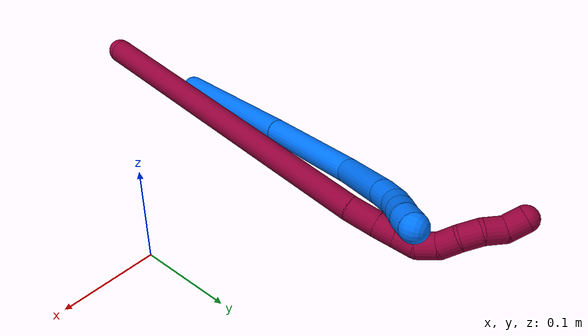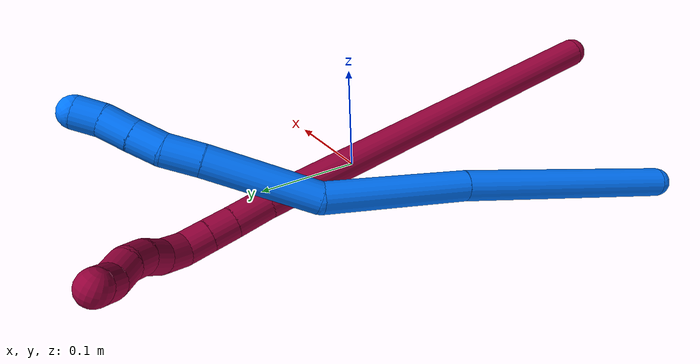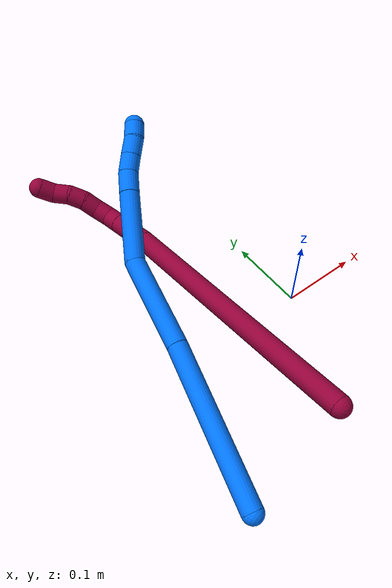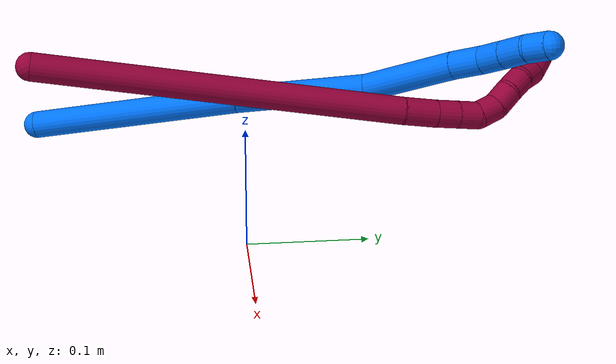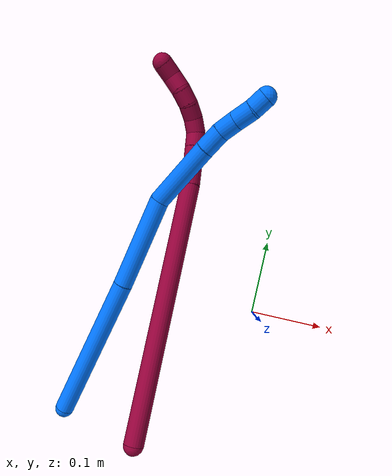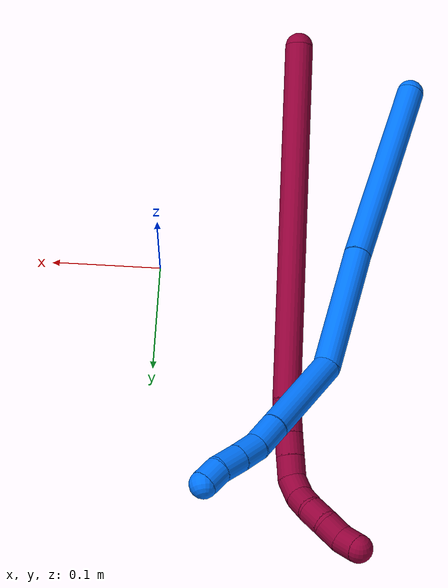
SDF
<sdf version="1.7">
 <world name="default">
  <model name="8">
   <static>0</static>
   <link name="8">
    <collision name="collision-cylinder-e_1_1_4">
     <pose>-0.027862 0.123415 0.104844 -0.866575 -0.170386 0.078972</pose>
     <geometry><cylinder><radius>0.0125</radius><length>0.328632</length></cylinder></geometry>
     <surface>
      <friction><ode><mu>1.16</mu><mu2>1.16</mu2><slip1>0</slip1><slip2>0</slip2></ode></friction>
      <contact><ode><kp>1e+06</kp><kd>1</kd><max_vel>0</max_vel><min_depth>0.001</min_depth></ode></contact>
     </surface>
    </collision>
    <visual name="visual-cylinder-e_1_1_4">
     <pose>-0.027862 0.123415 0.104844 -0.866575 -0.170386 0.078972</pose>
     <geometry><cylinder><radius>0.0125</radius><length>0.328632</length></cylinder></geometry>
     <material><ambient>0.584314 0 0.227451 1</ambient></material>
    </visual>
    <collision name="collision-cylinder-e_2_4_5">
     <pose>-0.056985 0.258665 0.21929 -0.889272 -0.082578 0.039362</pose>
     <geometry><cylinder><radius>0.0125</radius><length>0.030586</length></cylinder></geometry>
     <surface>
      <friction><ode><mu>1.16</mu><mu2>1.16</mu2><slip1>0</slip1><slip2>0</slip2></ode></friction>
      <contact><ode><kp>1e+06</kp><kd>1</kd><max_vel>0</max_vel><min_depth>0.001</min_depth></ode></contact>
     </surface>
    </collision>
    <visual name="visual-cylinder-e_2_4_5">
     <pose>-0.056985 0.258665 0.21929 -0.889272 -0.082578 0.039362</pose>
     <geometry><cylinder><radius>0.0125</radius><length>0.030586</length></cylinder></geometry>
     <material><ambient>0.584314 0 0.227451 1</ambient></material>
    </visual>
    <collision name="collision-cylinder-e_3_5_6">
     <pose>-0.059007 0.278737 0.23508 -0.926402 -0.07369 0.036816</pose>
     <geometry><cylinder><radius>0.0125</radius><length>0.020657</length></cylinder></geometry>
     <surface>
      <friction><ode><mu>1.16</mu><mu2>1.16</mu2><slip1>0</slip1><slip2>0</slip2></ode></friction>
      <contact><ode><kp>1e+06</kp><kd>1</kd><max_vel>0</max_vel><min_depth>0.001</min_depth></ode></contact>
     </surface>
    </collision>
    <visual name="visual-cylinder-e_3_5_6">
     <pose>-0.059007 0.278737 0.23508 -0.926402 -0.07369 0.036816</pose>
     <geometry><cylinder><radius>0.0125</radius><length>0.020657</length></cylinder></geometry>
     <material><ambient>0.584314 0 0.227451 1</ambient></material>
    </visual>
    <collision name="collision-cylinder-e_4_6_7">
     <pose>-0.060507 0.294961 0.247318 -0.922595 -0.073686 0.036639</pose>
     <geometry><cylinder><radius>0.0125</radius><length>0.020099</length></cylinder></geometry>
     <surface>
      <friction><ode><mu>1.16</mu><mu2>1.16</mu2><slip1>0</slip1><slip2>0</slip2></ode></friction>
      <contact><ode><kp>1e+06</kp><kd>1</kd><max_vel>0</max_vel><min_depth>0.001</min_depth></ode></contact>
     </surface>
    </collision>
    <visual name="visual-cylinder-e_4_6_7">
     <pose>-0.060507 0.294961 0.247318 -0.922595 -0.073686 0.036639</pose>
     <geometry><cylinder><radius>0.0125</radius><length>0.020099</length></cylinder></geometry>
     <material><ambient>0.584314 0 0.227451 1</ambient></material>
    </visual>
    <collision name="collision-cylinder-e_5_7_8">
     <pose>-0.059968 0.312671 0.255382 -1.36665 0.128195 -0.104421</pose>
     <geometry><cylinder><radius>0.0125</radius><length>0.020018</length></cylinder></geometry>
     <surface>
      <friction><ode><mu>1.16</mu><mu2>1.16</mu2><slip1>0</slip1><slip2>0</slip2></ode></friction>
      <contact><ode><kp>1e+06</kp><kd>1</kd><max_vel>0</max_vel><min_depth>0.001</min_depth></ode></contact>
     </surface>
    </collision>
    <visual name="visual-cylinder-e_5_7_8">
     <pose>-0.059968 0.312671 0.255382 -1.36665 0.128195 -0.104421</pose>
     <geometry><cylinder><radius>0.0125</radius><length>0.020018</length></cylinder></geometry>
     <material><ambient>0.584314 0 0.227451 1</ambient></material>
    </visual>
    <collision name="collision-cylinder-e_6_8_9">
     <pose>-0.056642 0.332076 0.255957 -1.71818 0.20604 -0.238597</pose>
     <geometry><cylinder><radius>0.0125</radius><length>0.020003</length></cylinder></geometry>
     <surface>
      <friction><ode><mu>1.16</mu><mu2>1.16</mu2><slip1>0</slip1><slip2>0</slip2></ode></friction>
      <contact><ode><kp>1e+06</kp><kd>1</kd><max_vel>0</max_vel><min_depth>0.001</min_depth></ode></contact>
     </surface>
    </collision>
    <visual name="visual-cylinder-e_6_8_9">
     <pose>-0.056642 0.332076 0.255957 -1.71818 0.20604 -0.238597</pose>
     <geometry><cylinder><radius>0.0125</radius><length>0.020003</length></cylinder></geometry>
     <material><ambient>0.584314 0 0.227451 1</ambient></material>
    </visual>
    <collision name="collision-cylinder-e_7_9_10">
     <pose>-0.050654 0.350951 0.254573 -1.56487 0.405111 -0.402783</pose>
     <geometry><cylinder><radius>0.0125</radius><length>0.02</length></cylinder></geometry>
     <surface>
      <friction><ode><mu>1.16</mu><mu2>1.16</mu2><slip1>0</slip1><slip2>0</slip2></ode></friction>
      <contact><ode><kp>1e+06</kp><kd>1</kd><max_vel>0</max_vel><min_depth>0.001</min_depth></ode></contact>
     </surface>
    </collision>
    <visual name="visual-cylinder-e_7_9_10">
     <pose>-0.050654 0.350951 0.254573 -1.56487 0.405111 -0.402783</pose>
     <geometry><cylinder><radius>0.0125</radius><length>0.02</length></cylinder></geometry>
     <material><ambient>0.584314 0 0.227451 1</ambient></material>
    </visual>
    <collision name="collision-cylinder-e_8_10_11">
     <pose>-0.041347 0.368175 0.257212 -1.25957 0.566344 -0.417949</pose>
     <geometry><cylinder><radius>0.0125</radius><length>0.020002</length></cylinder></geometry>
     <surface>
      <friction><ode><mu>1.16</mu><mu2>1.16</mu2><slip1>0</slip1><slip2>0</slip2></ode></friction>
      <contact><ode><kp>1e+06</kp><kd>1</kd><max_vel>0</max_vel><min_depth>0.001</min_depth></ode></contact>
     </surface>
    </collision>
    <visual name="visual-cylinder-e_8_10_11">
     <pose>-0.041347 0.368175 0.257212 -1.25957 0.566344 -0.417949</pose>
     <geometry><cylinder><radius>0.0125</radius><length>0.020002</length></cylinder></geometry>
     <material><ambient>0.584314 0 0.227451 1</ambient></material>
    </visual>
    <collision name="collision-cylinder-e_9_11_2">
     <pose>-0.031311 0.384894 0.25813 -1.76039 0.485853 -0.582729</pose>
     <geometry><cylinder><radius>0.0125</radius><length>0.020001</length></cylinder></geometry>
     <surface>
      <friction><ode><mu>1.16</mu><mu2>1.16</mu2><slip1>0</slip1><slip2>0</slip2></ode></friction>
      <contact><ode><kp>1e+06</kp><kd>1</kd><max_vel>0</max_vel><min_depth>0.001</min_depth></ode></contact>
     </surface>
    </collision>
    <visual name="visual-cylinder-e_9_11_2">
     <pose>-0.031311 0.384894 0.25813 -1.76039 0.485853 -0.582729</pose>
     <geometry><cylinder><radius>0.0125</radius><length>0.020001</length></cylinder></geometry>
     <material><ambient>0.584314 0 0.227451 1</ambient></material>
    </visual>
    <collision name="collision-sphere-2">
     <pose>-0.026641 0.393579 0.256464 0 -0 0</pose>
     <geometry><sphere><radius>0.0125</radius></sphere></geometry>
     <surface>
      <friction><ode><mu>1.16</mu><mu2>1.16</mu2><slip1>0</slip1><slip2>0</slip2></ode></friction>
      <contact><ode><kp>1e+06</kp><kd>1</kd><max_vel>0</max_vel><min_depth>0.001</min_depth></ode></contact>
     </surface>
    </collision>
    <visual name="visual-sphere-2">
     <pose>-0.026641 0.393579 0.256464 0 -0 0</pose>
     <geometry><sphere><radius>0.0125</radius></sphere></geometry>
     <material><ambient>0.584314 0 0.227451 1</ambient></material>
    </visual>
    <collision name="collision-sphere-11">
     <pose>-0.035981 0.37621 0.259797 0 -0 0</pose>
     <geometry><sphere><radius>0.0125</radius></sphere></geometry>
     <surface>
      <friction><ode><mu>1.16</mu><mu2>1.16</mu2><slip1>0</slip1><slip2>0</slip2></ode></friction>
      <contact><ode><kp>1e+06</kp><kd>1</kd><max_vel>0</max_vel><min_depth>0.001</min_depth></ode></contact>
     </surface>
    </collision>
    <visual name="visual-sphere-11">
     <pose>-0.035981 0.37621 0.259797 0 -0 0</pose>
     <geometry><sphere><radius>0.0125</radius></sphere></geometry>
     <material><ambient>0.584314 0 0.227451 1</ambient></material>
    </visual>
    <collision name="collision-sphere-10">
     <pose>-0.046713 0.360141 0.254628 0 -0 0</pose>
     <geometry><sphere><radius>0.0125</radius></sphere></geometry>
     <surface>
      <friction><ode><mu>1.16</mu><mu2>1.16</mu2><slip1>0</slip1><slip2>0</slip2></ode></friction>
      <contact><ode><kp>1e+06</kp><kd>1</kd><max_vel>0</max_vel><min_depth>0.001</min_depth></ode></contact>
     </surface>
    </collision>
    <visual name="visual-sphere-10">
     <pose>-0.046713 0.360141 0.254628 0 -0 0</pose>
     <geometry><sphere><radius>0.0125</radius></sphere></geometry>
     <material><ambient>0.584314 0 0.227451 1</ambient></material>
    </visual>
    <collision name="collision-sphere-9">
     <pose>-0.054596 0.34176 0.254519 0 -0 0</pose>
     <geometry><sphere><radius>0.0125</radius></sphere></geometry>
     <surface>
      <friction><ode><mu>1.16</mu><mu2>1.16</mu2><slip1>0</slip1><slip2>0</slip2></ode></friction>
      <contact><ode><kp>1e+06</kp><kd>1</kd><max_vel>0</max_vel><min_depth>0.001</min_depth></ode></contact>
     </surface>
    </collision>
    <visual name="visual-sphere-9">
     <pose>-0.054596 0.34176 0.254519 0 -0 0</pose>
     <geometry><sphere><radius>0.0125</radius></sphere></geometry>
     <material><ambient>0.584314 0 0.227451 1</ambient></material>
    </visual>
    <collision name="collision-sphere-4">
     <pose>-0.055724 0.246829 0.209689 0 -0 0</pose>
     <geometry><sphere><radius>0.0125</radius></sphere></geometry>
     <surface>
      <friction><ode><mu>1.16</mu><mu2>1.16</mu2><slip1>0</slip1><slip2>0</slip2></ode></friction>
      <contact><ode><kp>1e+06</kp><kd>1</kd><max_vel>0</max_vel><min_depth>0.001</min_depth></ode></contact>
     </surface>
    </collision>
    <visual name="visual-sphere-4">
     <pose>-0.055724 0.246829 0.209689 0 -0 0</pose>
     <geometry><sphere><radius>0.0125</radius></sphere></geometry>
     <material><ambient>0.584314 0 0.227451 1</ambient></material>
    </visual>
    <collision name="collision-sphere-1">
     <geometry><sphere><radius>0.0125</radius></sphere></geometry>
     <surface>
      <friction><ode><mu>1.16</mu><mu2>1.16</mu2><slip1>0</slip1><slip2>0</slip2></ode></friction>
      <contact><ode><kp>1e+06</kp><kd>1</kd><max_vel>0</max_vel><min_depth>0.001</min_depth></ode></contact>
     </surface>
    </collision>
    <visual name="visual-sphere-1">
     <geometry><sphere><radius>0.0125</radius></sphere></geometry>
     <material><ambient>0.584314 0 0.227451 1</ambient></material>
    </visual>
    <collision name="collision-sphere-8">
     <pose>-0.058688 0.322392 0.257394 0 -0 0</pose>
     <geometry><sphere><radius>0.0125</radius></sphere></geometry>
     <surface>
      <friction><ode><mu>1.16</mu><mu2>1.16</mu2><slip1>0</slip1><slip2>0</slip2></ode></friction>
      <contact><ode><kp>1e+06</kp><kd>1</kd><max_vel>0</max_vel><min_depth>0.001</min_depth></ode></contact>
     </surface>
    </collision>
    <visual name="visual-sphere-8">
     <pose>-0.058688 0.322392 0.257394 0 -0 0</pose>
     <geometry><sphere><radius>0.0125</radius></sphere></geometry>
     <material><ambient>0.584314 0 0.227451 1</ambient></material>
    </visual>
    <collision name="collision-sphere-5">
     <pose>-0.058247 0.270502 0.228892 0 -0 0</pose>
     <geometry><sphere><radius>0.0125</radius></sphere></geometry>
     <surface>
      <friction><ode><mu>1.16</mu><mu2>1.16</mu2><slip1>0</slip1><slip2>0</slip2></ode></friction>
      <contact><ode><kp>1e+06</kp><kd>1</kd><max_vel>0</max_vel><min_depth>0.001</min_depth></ode></contact>
     </surface>
    </collision>
    <visual name="visual-sphere-5">
     <pose>-0.058247 0.270502 0.228892 0 -0 0</pose>
     <geometry><sphere><radius>0.0125</radius></sphere></geometry>
     <material><ambient>0.584314 0 0.227451 1</ambient></material>
    </visual>
    <collision name="collision-sphere-6">
     <pose>-0.059768 0.286972 0.241267 0 -0 0</pose>
     <geometry><sphere><radius>0.0125</radius></sphere></geometry>
     <surface>
      <friction><ode><mu>1.16</mu><mu2>1.16</mu2><slip1>0</slip1><slip2>0</slip2></ode></friction>
      <contact><ode><kp>1e+06</kp><kd>1</kd><max_vel>0</max_vel><min_depth>0.001</min_depth></ode></contact>
     </surface>
    </collision>
    <visual name="visual-sphere-6">
     <pose>-0.059768 0.286972 0.241267 0 -0 0</pose>
     <geometry><sphere><radius>0.0125</radius></sphere></geometry>
     <material><ambient>0.584314 0 0.227451 1</ambient></material>
    </visual>
    <collision name="collision-sphere-7">
     <pose>-0.061247 0.302951 0.253369 0 -0 0</pose>
     <geometry><sphere><radius>0.0125</radius></sphere></geometry>
     <surface>
      <friction><ode><mu>1.16</mu><mu2>1.16</mu2><slip1>0</slip1><slip2>0</slip2></ode></friction>
      <contact><ode><kp>1e+06</kp><kd>1</kd><max_vel>0</max_vel><min_depth>0.001</min_depth></ode></contact>
     </surface>
    </collision>
    <visual name="visual-sphere-7">
     <pose>-0.061247 0.302951 0.253369 0 -0 0</pose>
     <geometry><sphere><radius>0.0125</radius></sphere></geometry>
     <material><ambient>0.584314 0 0.227451 1</ambient></material>
    </visual>
    <inertial>
     <pose>-0.036268 0.190279 0.153242 0 -0 0</pose>
     <mass>0.5</mass>
     <inertia>
      <ixx>0.003158</ixx>
      <ixy>0</ixy>
      <ixz>0</ixz>
      <iyy>0.002213</iyy>
      <iyz>0</iyz>
      <izz>-0.001721</izz>
     </inertia>
    </inertial>
   </link>
   <pose>-0.118384 -0.175534 0.117947 2.64096 0.191829 -2.91797</pose>
  </model>
  <model name="14">
   <static>0</static>
   <link name="14">
    <collision name="collision-cylinder-e_1_1_4">
     <pose>-0.000472 0.04297 0.088024 -0.454132 -0.004818 0.001113</pose>
     <geometry><cylinder><radius>0.0125</radius><length>0.195907</length></cylinder></geometry>
     <surface>
      <friction><ode><mu>1.16</mu><mu2>1.16</mu2><slip1>0</slip1><slip2>0</slip2></ode></friction>
      <contact><ode><kp>1e+06</kp><kd>1</kd><max_vel>0</max_vel><min_depth>0.001</min_depth></ode></contact>
     </surface>
    </collision>
    <visual name="visual-cylinder-e_1_1_4">
     <pose>-0.000472 0.04297 0.088024 -0.454132 -0.004818 0.001113</pose>
     <geometry><cylinder><radius>0.0125</radius><length>0.195907</length></cylinder></geometry>
     <material><ambient>0 0.462745 1 1</ambient></material>
    </visual>
    <collision name="collision-cylinder-e_2_4_5">
     <pose>-0.00315 0.109598 0.231469 -0.403462 -0.036594 0.007485</pose>
     <geometry><cylinder><radius>0.0125</radius><length>0.120599</length></cylinder></geometry>
     <surface>
      <friction><ode><mu>1.16</mu><mu2>1.16</mu2><slip1>0</slip1><slip2>0</slip2></ode></friction>
      <contact><ode><kp>1e+06</kp><kd>1</kd><max_vel>0</max_vel><min_depth>0.001</min_depth></ode></contact>
     </surface>
    </collision>
    <visual name="visual-cylinder-e_2_4_5">
     <pose>-0.00315 0.109598 0.231469 -0.403462 -0.036594 0.007485</pose>
     <geometry><cylinder><radius>0.0125</radius><length>0.120599</length></cylinder></geometry>
     <material><ambient>0 0.462745 1 1</ambient></material>
    </visual>
    <collision name="collision-cylinder-e_3_5_6">
     <pose>-0.001429 0.165136 0.317491 -0.805864 0.08864 -0.037803</pose>
     <geometry><cylinder><radius>0.0125</radius><length>0.08873</length></cylinder></geometry>
     <surface>
      <friction><ode><mu>1.16</mu><mu2>1.16</mu2><slip1>0</slip1><slip2>0</slip2></ode></friction>
      <contact><ode><kp>1e+06</kp><kd>1</kd><max_vel>0</max_vel><min_depth>0.001</min_depth></ode></contact>
     </surface>
    </collision>
    <visual name="visual-cylinder-e_3_5_6">
     <pose>-0.001429 0.165136 0.317491 -0.805864 0.08864 -0.037803</pose>
     <geometry><cylinder><radius>0.0125</radius><length>0.08873</length></cylinder></geometry>
     <material><ambient>0 0.462745 1 1</ambient></material>
    </visual>
    <collision name="collision-cylinder-e_4_6_7">
     <pose>0.002883 0.207171 0.35784 -0.805849 0.027327 -0.011649</pose>
     <geometry><cylinder><radius>0.0125</radius><length>0.028162</length></cylinder></geometry>
     <surface>
      <friction><ode><mu>1.16</mu><mu2>1.16</mu2><slip1>0</slip1><slip2>0</slip2></ode></friction>
      <contact><ode><kp>1e+06</kp><kd>1</kd><max_vel>0</max_vel><min_depth>0.001</min_depth></ode></contact>
     </surface>
    </collision>
    <visual name="visual-cylinder-e_4_6_7">
     <pose>0.002883 0.207171 0.35784 -0.805849 0.027327 -0.011649</pose>
     <geometry><cylinder><radius>0.0125</radius><length>0.028162</length></cylinder></geometry>
     <material><ambient>0 0.462745 1 1</ambient></material>
    </visual>
    <collision name="collision-cylinder-e_5_7_8">
     <pose>0.00393 0.227063 0.373542 -1.02193 0.057909 -0.032471</pose>
     <geometry><cylinder><radius>0.0125</radius><length>0.022866</length></cylinder></geometry>
     <surface>
      <friction><ode><mu>1.16</mu><mu2>1.16</mu2><slip1>0</slip1><slip2>0</slip2></ode></friction>
      <contact><ode><kp>1e+06</kp><kd>1</kd><max_vel>0</max_vel><min_depth>0.001</min_depth></ode></contact>
     </surface>
    </collision>
    <visual name="visual-cylinder-e_5_7_8">
     <pose>0.00393 0.227063 0.373542 -1.02193 0.057909 -0.032471</pose>
     <geometry><cylinder><radius>0.0125</radius><length>0.022866</length></cylinder></geometry>
     <material><ambient>0 0.462745 1 1</ambient></material>
    </visual>
    <collision name="collision-cylinder-e_6_8_9">
     <pose>0.005292 0.24711 0.385322 -1.05647 0.059142 -0.034519</pose>
     <geometry><cylinder><radius>0.0125</radius><length>0.023723</length></cylinder></geometry>
     <surface>
      <friction><ode><mu>1.16</mu><mu2>1.16</mu2><slip1>0</slip1><slip2>0</slip2></ode></friction>
      <contact><ode><kp>1e+06</kp><kd>1</kd><max_vel>0</max_vel><min_depth>0.001</min_depth></ode></contact>
     </surface>
    </collision>
    <visual name="visual-cylinder-e_6_8_9">
     <pose>0.005292 0.24711 0.385322 -1.05647 0.059142 -0.034519</pose>
     <geometry><cylinder><radius>0.0125</radius><length>0.023723</length></cylinder></geometry>
     <material><ambient>0 0.462745 1 1</ambient></material>
    </visual>
    <collision name="collision-cylinder-e_7_9_2">
     <pose>0.005822 0.265053 0.397614 -0.868022 -0.017133 0.007941</pose>
     <geometry><cylinder><radius>0.0125</radius><length>0.020013</length></cylinder></geometry>
     <surface>
      <friction><ode><mu>1.16</mu><mu2>1.16</mu2><slip1>0</slip1><slip2>0</slip2></ode></friction>
      <contact><ode><kp>1e+06</kp><kd>1</kd><max_vel>0</max_vel><min_depth>0.001</min_depth></ode></contact>
     </surface>
    </collision>
    <visual name="visual-cylinder-e_7_9_2">
     <pose>0.005822 0.265053 0.397614 -0.868022 -0.017133 0.007941</pose>
     <geometry><cylinder><radius>0.0125</radius><length>0.020013</length></cylinder></geometry>
     <material><ambient>0 0.462745 1 1</ambient></material>
    </visual>
    <collision name="collision-sphere-2">
     <pose>0.005651 0.272687 0.404081 0 -0 0</pose>
     <geometry><sphere><radius>0.0125</radius></sphere></geometry>
     <surface>
      <friction><ode><mu>1.16</mu><mu2>1.16</mu2><slip1>0</slip1><slip2>0</slip2></ode></friction>
      <contact><ode><kp>1e+06</kp><kd>1</kd><max_vel>0</max_vel><min_depth>0.001</min_depth></ode></contact>
     </surface>
    </collision>
    <visual name="visual-sphere-2">
     <pose>0.005651 0.272687 0.404081 0 -0 0</pose>
     <geometry><sphere><radius>0.0125</radius></sphere></geometry>
     <material><ambient>0 0.462745 1 1</ambient></material>
    </visual>
    <collision name="collision-sphere-9">
     <pose>0.005994 0.257418 0.391147 0 -0 0</pose>
     <geometry><sphere><radius>0.0125</radius></sphere></geometry>
     <surface>
      <friction><ode><mu>1.16</mu><mu2>1.16</mu2><slip1>0</slip1><slip2>0</slip2></ode></friction>
      <contact><ode><kp>1e+06</kp><kd>1</kd><max_vel>0</max_vel><min_depth>0.001</min_depth></ode></contact>
     </surface>
    </collision>
    <visual name="visual-sphere-9">
     <pose>0.005994 0.257418 0.391147 0 -0 0</pose>
     <geometry><sphere><radius>0.0125</radius></sphere></geometry>
     <material><ambient>0 0.462745 1 1</ambient></material>
    </visual>
    <collision name="collision-sphere-4">
     <pose>-0.000944 0.08594 0.176048 0 -0 0</pose>
     <geometry><sphere><radius>0.0125</radius></sphere></geometry>
     <surface>
      <friction><ode><mu>1.16</mu><mu2>1.16</mu2><slip1>0</slip1><slip2>0</slip2></ode></friction>
      <contact><ode><kp>1e+06</kp><kd>1</kd><max_vel>0</max_vel><min_depth>0.001</min_depth></ode></contact>
     </surface>
    </collision>
    <visual name="visual-sphere-4">
     <pose>-0.000944 0.08594 0.176048 0 -0 0</pose>
     <geometry><sphere><radius>0.0125</radius></sphere></geometry>
     <material><ambient>0 0.462745 1 1</ambient></material>
    </visual>
    <collision name="collision-sphere-1">
     <geometry><sphere><radius>0.0125</radius></sphere></geometry>
     <surface>
      <friction><ode><mu>1.16</mu><mu2>1.16</mu2><slip1>0</slip1><slip2>0</slip2></ode></friction>
      <contact><ode><kp>1e+06</kp><kd>1</kd><max_vel>0</max_vel><min_depth>0.001</min_depth></ode></contact>
     </surface>
    </collision>
    <visual name="visual-sphere-1">
     <geometry><sphere><radius>0.0125</radius></sphere></geometry>
     <material><ambient>0 0.462745 1 1</ambient></material>
    </visual>
    <collision name="collision-sphere-8">
     <pose>0.004591 0.236801 0.379497 0 -0 0</pose>
     <geometry><sphere><radius>0.0125</radius></sphere></geometry>
     <surface>
      <friction><ode><mu>1.16</mu><mu2>1.16</mu2><slip1>0</slip1><slip2>0</slip2></ode></friction>
      <contact><ode><kp>1e+06</kp><kd>1</kd><max_vel>0</max_vel><min_depth>0.001</min_depth></ode></contact>
     </surface>
    </collision>
    <visual name="visual-sphere-8">
     <pose>0.004591 0.236801 0.379497 0 -0 0</pose>
     <geometry><sphere><radius>0.0125</radius></sphere></geometry>
     <material><ambient>0 0.462745 1 1</ambient></material>
    </visual>
    <collision name="collision-sphere-5">
     <pose>-0.005356 0.133256 0.286889 0 -0 0</pose>
     <geometry><sphere><radius>0.0125</radius></sphere></geometry>
     <surface>
      <friction><ode><mu>1.16</mu><mu2>1.16</mu2><slip1>0</slip1><slip2>0</slip2></ode></friction>
      <contact><ode><kp>1e+06</kp><kd>1</kd><max_vel>0</max_vel><min_depth>0.001</min_depth></ode></contact>
     </surface>
    </collision>
    <visual name="visual-sphere-5">
     <pose>-0.005356 0.133256 0.286889 0 -0 0</pose>
     <geometry><sphere><radius>0.0125</radius></sphere></geometry>
     <material><ambient>0 0.462745 1 1</ambient></material>
    </visual>
    <collision name="collision-sphere-6">
     <pose>0.002498 0.197017 0.348092 0 -0 0</pose>
     <geometry><sphere><radius>0.0125</radius></sphere></geometry>
     <surface>
      <friction><ode><mu>1.16</mu><mu2>1.16</mu2><slip1>0</slip1><slip2>0</slip2></ode></friction>
      <contact><ode><kp>1e+06</kp><kd>1</kd><max_vel>0</max_vel><min_depth>0.001</min_depth></ode></contact>
     </surface>
    </collision>
    <visual name="visual-sphere-6">
     <pose>0.002498 0.197017 0.348092 0 -0 0</pose>
     <geometry><sphere><radius>0.0125</radius></sphere></geometry>
     <material><ambient>0 0.462745 1 1</ambient></material>
    </visual>
    <collision name="collision-sphere-7">
     <pose>0.003268 0.217326 0.367588 0 -0 0</pose>
     <geometry><sphere><radius>0.0125</radius></sphere></geometry>
     <surface>
      <friction><ode><mu>1.16</mu><mu2>1.16</mu2><slip1>0</slip1><slip2>0</slip2></ode></friction>
      <contact><ode><kp>1e+06</kp><kd>1</kd><max_vel>0</max_vel><min_depth>0.001</min_depth></ode></contact>
     </surface>
    </collision>
    <visual name="visual-sphere-7">
     <pose>0.003268 0.217326 0.367588 0 -0 0</pose>
     <geometry><sphere><radius>0.0125</radius></sphere></geometry>
     <material><ambient>0 0.462745 1 1</ambient></material>
    </visual>
    <inertial>
     <pose>-0.000372 0.116962 0.218096 0 -0 0</pose>
     <mass>0.5</mass>
     <inertia>
      <ixx>0.000855</ixx>
      <ixy>0</ixy>
      <ixz>0</ixz>
      <iyy>0.000777</iyy>
      <iyz>0</iyz>
      <izz>-0.000354</izz>
     </inertia>
    </inertial>
   </link>
   <pose>-0.226112 -0.184155 0.023473 1.55262 -1.14922 -2.9414</pose>
  </model>
 </world>
</sdf>
